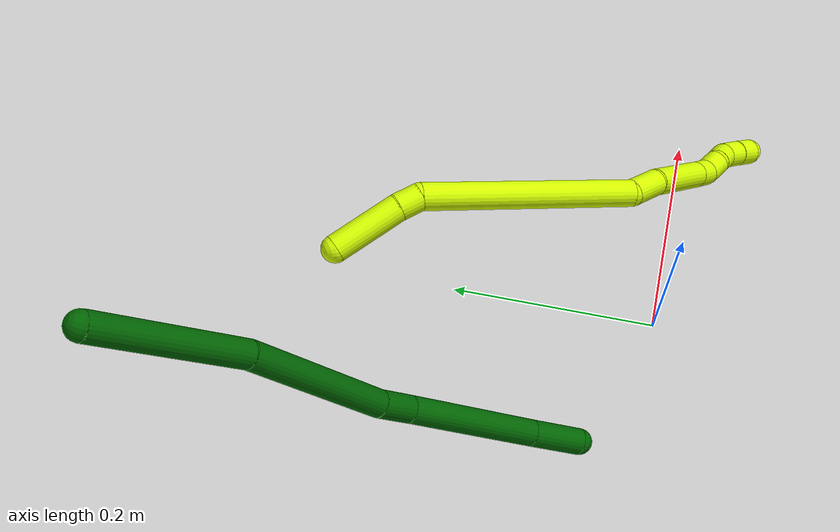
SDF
<sdf version="1.7">
 <world name="default">
  <model name="6">
   <static>0</static>
   <link name="6">
    <collision name="collision-cylinder-e_1_1_4">
     <pose>0.001621 0.018217 -0.067305 -2.87726 0.02324 -0.174379</pose>
     <geometry><cylinder><radius>0.0125</radius><length>0.139492</length></cylinder></geometry>
     <surface>
      <friction><ode><mu>1.16</mu><mu2>1.16</mu2><slip1>0</slip1><slip2>0</slip2></ode></friction>
      <contact><ode><kp>1e+06</kp><kd>1</kd><max_vel>0</max_vel><min_depth>0.001</min_depth></ode></contact>
     </surface>
    </collision>
    <visual name="visual-cylinder-e_1_1_4">
     <pose>0.001621 0.018217 -0.067305 -2.87726 0.02324 -0.174379</pose>
     <geometry><cylinder><radius>0.0125</radius><length>0.139492</length></cylinder></geometry>
     <material><ambient>0 0.392157 0.003922 1</ambient></material>
    </visual>
    <collision name="collision-cylinder-e_2_4_5">
     <pose>-0.006898 0.056097 -0.202424 -2.85937 -0.142634 0.931912</pose>
     <geometry><cylinder><radius>0.0125</radius><length>0.142662</length></cylinder></geometry>
     <surface>
      <friction><ode><mu>1.16</mu><mu2>1.16</mu2><slip1>0</slip1><slip2>0</slip2></ode></friction>
      <contact><ode><kp>1e+06</kp><kd>1</kd><max_vel>0</max_vel><min_depth>0.001</min_depth></ode></contact>
     </surface>
    </collision>
    <visual name="visual-cylinder-e_2_4_5">
     <pose>-0.006898 0.056097 -0.202424 -2.85937 -0.142634 0.931912</pose>
     <geometry><cylinder><radius>0.0125</radius><length>0.142662</length></cylinder></geometry>
     <material><ambient>0 0.392157 0.003922 1</ambient></material>
    </visual>
    <collision name="collision-cylinder-e_3_5_6">
     <pose>-0.017001 0.080185 -0.287022 -2.88384 0.002152 -0.016604</pose>
     <geometry><cylinder><radius>0.0125</radius><length>0.034716</length></cylinder></geometry>
     <surface>
      <friction><ode><mu>1.16</mu><mu2>1.16</mu2><slip1>0</slip1><slip2>0</slip2></ode></friction>
      <contact><ode><kp>1e+06</kp><kd>1</kd><max_vel>0</max_vel><min_depth>0.001</min_depth></ode></contact>
     </surface>
    </collision>
    <visual name="visual-cylinder-e_3_5_6">
     <pose>-0.017001 0.080185 -0.287022 -2.88384 0.002152 -0.016604</pose>
     <geometry><cylinder><radius>0.0125</radius><length>0.034716</length></cylinder></geometry>
     <material><ambient>0 0.392157 0.003922 1</ambient></material>
    </visual>
    <collision name="collision-cylinder-e_4_6_7">
     <pose>-0.015177 0.089704 -0.369501 -3.06421 0.0271 -0.673446</pose>
     <geometry><cylinder><radius>0.0125</radius><length>0.131832</length></cylinder></geometry>
     <surface>
      <friction><ode><mu>1.16</mu><mu2>1.16</mu2><slip1>0</slip1><slip2>0</slip2></ode></friction>
      <contact><ode><kp>1e+06</kp><kd>1</kd><max_vel>0</max_vel><min_depth>0.001</min_depth></ode></contact>
     </surface>
    </collision>
    <visual name="visual-cylinder-e_4_6_7">
     <pose>-0.015177 0.089704 -0.369501 -3.06421 0.0271 -0.673446</pose>
     <geometry><cylinder><radius>0.0125</radius><length>0.131832</length></cylinder></geometry>
     <material><ambient>0 0.392157 0.003922 1</ambient></material>
    </visual>
    <collision name="collision-cylinder-e_5_7_2">
     <pose>-0.011788 0.093693 -0.460771 3.09841 0.062557 1.93336</pose>
     <geometry><cylinder><radius>0.0125</radius><length>0.051298</length></cylinder></geometry>
     <surface>
      <friction><ode><mu>1.16</mu><mu2>1.16</mu2><slip1>0</slip1><slip2>0</slip2></ode></friction>
      <contact><ode><kp>1e+06</kp><kd>1</kd><max_vel>0</max_vel><min_depth>0.001</min_depth></ode></contact>
     </surface>
    </collision>
    <visual name="visual-cylinder-e_5_7_2">
     <pose>-0.011788 0.093693 -0.460771 3.09841 0.062557 1.93336</pose>
     <geometry><cylinder><radius>0.0125</radius><length>0.051298</length></cylinder></geometry>
     <material><ambient>0 0.392157 0.003922 1</ambient></material>
    </visual>
    <collision name="collision-sphere-2">
     <pose>-0.010184 0.092588 -0.486346 0 -0 0</pose>
     <geometry><sphere><radius>0.0125</radius></sphere></geometry>
     <surface>
      <friction><ode><mu>1.16</mu><mu2>1.16</mu2><slip1>0</slip1><slip2>0</slip2></ode></friction>
      <contact><ode><kp>1e+06</kp><kd>1</kd><max_vel>0</max_vel><min_depth>0.001</min_depth></ode></contact>
     </surface>
    </collision>
    <visual name="visual-sphere-2">
     <pose>-0.010184 0.092588 -0.486346 0 -0 0</pose>
     <geometry><sphere><radius>0.0125</radius></sphere></geometry>
     <material><ambient>0 0.392157 0.003922 1</ambient></material>
    </visual>
    <collision name="collision-sphere-7">
     <pose>-0.013391 0.094798 -0.435196 0 -0 0</pose>
     <geometry><sphere><radius>0.0125</radius></sphere></geometry>
     <surface>
      <friction><ode><mu>1.16</mu><mu2>1.16</mu2><slip1>0</slip1><slip2>0</slip2></ode></friction>
      <contact><ode><kp>1e+06</kp><kd>1</kd><max_vel>0</max_vel><min_depth>0.001</min_depth></ode></contact>
     </surface>
    </collision>
    <visual name="visual-sphere-7">
     <pose>-0.013391 0.094798 -0.435196 0 -0 0</pose>
     <geometry><sphere><radius>0.0125</radius></sphere></geometry>
     <material><ambient>0 0.392157 0.003922 1</ambient></material>
    </visual>
    <collision name="collision-sphere-6">
     <pose>-0.016963 0.08461 -0.303806 0 -0 0</pose>
     <geometry><sphere><radius>0.0125</radius></sphere></geometry>
     <surface>
      <friction><ode><mu>1.16</mu><mu2>1.16</mu2><slip1>0</slip1><slip2>0</slip2></ode></friction>
      <contact><ode><kp>1e+06</kp><kd>1</kd><max_vel>0</max_vel><min_depth>0.001</min_depth></ode></contact>
     </surface>
    </collision>
    <visual name="visual-sphere-6">
     <pose>-0.016963 0.08461 -0.303806 0 -0 0</pose>
     <geometry><sphere><radius>0.0125</radius></sphere></geometry>
     <material><ambient>0 0.392157 0.003922 1</ambient></material>
    </visual>
    <collision name="collision-sphere-5">
     <pose>-0.017038 0.075761 -0.270237 0 -0 0</pose>
     <geometry><sphere><radius>0.0125</radius></sphere></geometry>
     <surface>
      <friction><ode><mu>1.16</mu><mu2>1.16</mu2><slip1>0</slip1><slip2>0</slip2></ode></friction>
      <contact><ode><kp>1e+06</kp><kd>1</kd><max_vel>0</max_vel><min_depth>0.001</min_depth></ode></contact>
     </surface>
    </collision>
    <visual name="visual-sphere-5">
     <pose>-0.017038 0.075761 -0.270237 0 -0 0</pose>
     <geometry><sphere><radius>0.0125</radius></sphere></geometry>
     <material><ambient>0 0.392157 0.003922 1</ambient></material>
    </visual>
    <collision name="collision-sphere-1">
     <geometry><sphere><radius>0.0125</radius></sphere></geometry>
     <surface>
      <friction><ode><mu>1.16</mu><mu2>1.16</mu2><slip1>0</slip1><slip2>0</slip2></ode></friction>
      <contact><ode><kp>1e+06</kp><kd>1</kd><max_vel>0</max_vel><min_depth>0.001</min_depth></ode></contact>
     </surface>
    </collision>
    <visual name="visual-sphere-1">
     <geometry><sphere><radius>0.0125</radius></sphere></geometry>
     <material><ambient>0 0.392157 0.003922 1</ambient></material>
    </visual>
    <collision name="collision-sphere-4">
     <pose>0.003241 0.036434 -0.134611 0 -0 0</pose>
     <geometry><sphere><radius>0.0125</radius></sphere></geometry>
     <surface>
      <friction><ode><mu>1.16</mu><mu2>1.16</mu2><slip1>0</slip1><slip2>0</slip2></ode></friction>
      <contact><ode><kp>1e+06</kp><kd>1</kd><max_vel>0</max_vel><min_depth>0.001</min_depth></ode></contact>
     </surface>
    </collision>
    <visual name="visual-sphere-4">
     <pose>0.003241 0.036434 -0.134611 0 -0 0</pose>
     <geometry><sphere><radius>0.0125</radius></sphere></geometry>
     <material><ambient>0 0.392157 0.003922 1</ambient></material>
    </visual>
    <inertial>
     <pose>-0.007908 0.05992 -0.24116 0 -0 0</pose>
     <mass>0.5</mass>
     <inertia>
      <ixx>0.000573</ixx>
      <ixy>0</ixy>
      <ixz>0</ixz>
      <iyy>-0.000453</iyy>
      <iyz>0</iyz>
      <izz>-0.000159</izz>
     </inertia>
    </inertial>
   </link>
   <pose>-0.211076 0.416723 0.337985 -0.966418 -0.416702 -0.155949</pose>
  </model>
  <model name="15">
   <static>0</static>
   <link name="15">
    <collision name="collision-cylinder-e_1_1_4">
     <pose>-0.008478 0.007068 -0.030436 -2.91341 -0.264957 1.72115</pose>
     <geometry><cylinder><radius>0.0125</radius><length>0.064751</length></cylinder></geometry>
     <surface>
      <friction><ode><mu>1.16</mu><mu2>1.16</mu2><slip1>0</slip1><slip2>0</slip2></ode></friction>
      <contact><ode><kp>1e+06</kp><kd>1</kd><max_vel>0</max_vel><min_depth>0.001</min_depth></ode></contact>
     </surface>
    </collision>
    <visual name="visual-cylinder-e_1_1_4">
     <pose>-0.008478 0.007068 -0.030436 -2.91341 -0.264957 1.72115</pose>
     <geometry><cylinder><radius>0.0125</radius><length>0.064751</length></cylinder></geometry>
     <material><ambient>0.835294 1 0 1</ambient></material>
    </visual>
    <collision name="collision-cylinder-e_2_4_5">
     <pose>-0.018473 0.016231 -0.07139 -2.94502 -0.140533 1.23984</pose>
     <geometry><cylinder><radius>0.0125</radius><length>0.021663</length></cylinder></geometry>
     <surface>
      <friction><ode><mu>1.16</mu><mu2>1.16</mu2><slip1>0</slip1><slip2>0</slip2></ode></friction>
      <contact><ode><kp>1e+06</kp><kd>1</kd><max_vel>0</max_vel><min_depth>0.001</min_depth></ode></contact>
     </surface>
    </collision>
    <visual name="visual-cylinder-e_2_4_5">
     <pose>-0.018473 0.016231 -0.07139 -2.94502 -0.140533 1.23984</pose>
     <geometry><cylinder><radius>0.0125</radius><length>0.021663</length></cylinder></geometry>
     <material><ambient>0.835294 1 0 1</ambient></material>
    </visual>
    <collision name="collision-cylinder-e_3_5_6">
     <pose>0.007807 0.02938 -0.177788 -3.02681 0.280421 -2.36838</pose>
     <geometry><cylinder><radius>0.0125</radius><length>0.200876</length></cylinder></geometry>
     <surface>
      <friction><ode><mu>1.16</mu><mu2>1.16</mu2><slip1>0</slip1><slip2>0</slip2></ode></friction>
      <contact><ode><kp>1e+06</kp><kd>1</kd><max_vel>0</max_vel><min_depth>0.001</min_depth></ode></contact>
     </surface>
    </collision>
    <visual name="visual-cylinder-e_3_5_6">
     <pose>0.007807 0.02938 -0.177788 -3.02681 0.280421 -2.36838</pose>
     <geometry><cylinder><radius>0.0125</radius><length>0.200876</length></cylinder></geometry>
     <material><ambient>0.835294 1 0 1</ambient></material>
    </visual>
    <collision name="collision-cylinder-e_4_6_7">
     <pose>0.034563 0.036396 -0.290374 2.90445 -0.060471 -0.497259</pose>
     <geometry><cylinder><radius>0.0125</radius><length>0.034438</length></cylinder></geometry>
     <surface>
      <friction><ode><mu>1.16</mu><mu2>1.16</mu2><slip1>0</slip1><slip2>0</slip2></ode></friction>
      <contact><ode><kp>1e+06</kp><kd>1</kd><max_vel>0</max_vel><min_depth>0.001</min_depth></ode></contact>
     </surface>
    </collision>
    <visual name="visual-cylinder-e_4_6_7">
     <pose>0.034563 0.036396 -0.290374 2.90445 -0.060471 -0.497259</pose>
     <geometry><cylinder><radius>0.0125</radius><length>0.034438</length></cylinder></geometry>
     <material><ambient>0.835294 1 0 1</ambient></material>
    </visual>
    <collision name="collision-cylinder-e_5_7_8">
     <pose>0.036859 0.016461 -0.340876 2.7019 0.089088 0.393776</pose>
     <geometry><cylinder><radius>0.0125</radius><length>0.074993</length></cylinder></geometry>
     <surface>
      <friction><ode><mu>1.16</mu><mu2>1.16</mu2><slip1>0</slip1><slip2>0</slip2></ode></friction>
      <contact><ode><kp>1e+06</kp><kd>1</kd><max_vel>0</max_vel><min_depth>0.001</min_depth></ode></contact>
     </surface>
    </collision>
    <visual name="visual-cylinder-e_5_7_8">
     <pose>0.036859 0.016461 -0.340876 2.7019 0.089088 0.393776</pose>
     <geometry><cylinder><radius>0.0125</radius><length>0.074993</length></cylinder></geometry>
     <material><ambient>0.835294 1 0 1</ambient></material>
    </visual>
    <collision name="collision-cylinder-e_6_8_9">
     <pose>0.040893 -0.003359 -0.383923 2.74053 0.069379 0.338199</pose>
     <geometry><cylinder><radius>0.0125</radius><length>0.020145</length></cylinder></geometry>
     <surface>
      <friction><ode><mu>1.16</mu><mu2>1.16</mu2><slip1>0</slip1><slip2>0</slip2></ode></friction>
      <contact><ode><kp>1e+06</kp><kd>1</kd><max_vel>0</max_vel><min_depth>0.001</min_depth></ode></contact>
     </surface>
    </collision>
    <visual name="visual-cylinder-e_6_8_9">
     <pose>0.040893 -0.003359 -0.383923 2.74053 0.069379 0.338199</pose>
     <geometry><cylinder><radius>0.0125</radius><length>0.020145</length></cylinder></geometry>
     <material><ambient>0.835294 1 0 1</ambient></material>
    </visual>
    <collision name="collision-cylinder-e_7_9_10">
     <pose>0.038685 -0.009061 -0.402594 2.95498 -0.294351 -2.01548</pose>
     <geometry><cylinder><radius>0.0125</radius><length>0.020035</length></cylinder></geometry>
     <surface>
      <friction><ode><mu>1.16</mu><mu2>1.16</mu2><slip1>0</slip1><slip2>0</slip2></ode></friction>
      <contact><ode><kp>1e+06</kp><kd>1</kd><max_vel>0</max_vel><min_depth>0.001</min_depth></ode></contact>
     </surface>
    </collision>
    <visual name="visual-cylinder-e_7_9_10">
     <pose>0.038685 -0.009061 -0.402594 2.95498 -0.294351 -2.01548</pose>
     <geometry><cylinder><radius>0.0125</radius><length>0.020035</length></cylinder></geometry>
     <material><ambient>0.835294 1 0 1</ambient></material>
    </visual>
    <collision name="collision-cylinder-e_8_10_11">
     <pose>0.033988 -0.016501 -0.420974 2.57803 -0.167354 -0.56402</pose>
     <geometry><cylinder><radius>0.0125</radius><length>0.021498</length></cylinder></geometry>
     <surface>
      <friction><ode><mu>1.16</mu><mu2>1.16</mu2><slip1>0</slip1><slip2>0</slip2></ode></friction>
      <contact><ode><kp>1e+06</kp><kd>1</kd><max_vel>0</max_vel><min_depth>0.001</min_depth></ode></contact>
     </surface>
    </collision>
    <visual name="visual-cylinder-e_8_10_11">
     <pose>0.033988 -0.016501 -0.420974 2.57803 -0.167354 -0.56402</pose>
     <geometry><cylinder><radius>0.0125</radius><length>0.021498</length></cylinder></geometry>
     <material><ambient>0.835294 1 0 1</ambient></material>
    </visual>
    <collision name="collision-cylinder-e_9_11_12">
     <pose>0.033281 -0.024529 -0.440045 2.9118 0.103924 0.846817</pose>
     <geometry><cylinder><radius>0.0125</radius><length>0.020881</length></cylinder></geometry>
     <surface>
      <friction><ode><mu>1.16</mu><mu2>1.16</mu2><slip1>0</slip1><slip2>0</slip2></ode></friction>
      <contact><ode><kp>1e+06</kp><kd>1</kd><max_vel>0</max_vel><min_depth>0.001</min_depth></ode></contact>
     </surface>
    </collision>
    <visual name="visual-cylinder-e_9_11_12">
     <pose>0.033281 -0.024529 -0.440045 2.9118 0.103924 0.846817</pose>
     <geometry><cylinder><radius>0.0125</radius><length>0.020881</length></cylinder></geometry>
     <material><ambient>0.835294 1 0 1</ambient></material>
    </visual>
    <collision name="collision-cylinder-e_10_12_2">
     <pose>0.035693 -0.029979 -0.459955 2.83654 0.128651 0.793617</pose>
     <geometry><cylinder><radius>0.0125</radius><length>0.020719</length></cylinder></geometry>
     <surface>
      <friction><ode><mu>1.16</mu><mu2>1.16</mu2><slip1>0</slip1><slip2>0</slip2></ode></friction>
      <contact><ode><kp>1e+06</kp><kd>1</kd><max_vel>0</max_vel><min_depth>0.001</min_depth></ode></contact>
     </surface>
    </collision>
    <visual name="visual-cylinder-e_10_12_2">
     <pose>0.035693 -0.029979 -0.459955 2.83654 0.128651 0.793617</pose>
     <geometry><cylinder><radius>0.0125</radius><length>0.020719</length></cylinder></geometry>
     <material><ambient>0.835294 1 0 1</ambient></material>
    </visual>
    <collision name="collision-sphere-2">
     <pose>0.037022 -0.033065 -0.469755 0 -0 0</pose>
     <geometry><sphere><radius>0.0125</radius></sphere></geometry>
     <surface>
      <friction><ode><mu>1.16</mu><mu2>1.16</mu2><slip1>0</slip1><slip2>0</slip2></ode></friction>
      <contact><ode><kp>1e+06</kp><kd>1</kd><max_vel>0</max_vel><min_depth>0.001</min_depth></ode></contact>
     </surface>
    </collision>
    <visual name="visual-sphere-2">
     <pose>0.037022 -0.033065 -0.469755 0 -0 0</pose>
     <geometry><sphere><radius>0.0125</radius></sphere></geometry>
     <material><ambient>0.835294 1 0 1</ambient></material>
    </visual>
    <collision name="collision-sphere-12">
     <pose>0.034364 -0.026894 -0.450156 0 -0 0</pose>
     <geometry><sphere><radius>0.0125</radius></sphere></geometry>
     <surface>
      <friction><ode><mu>1.16</mu><mu2>1.16</mu2><slip1>0</slip1><slip2>0</slip2></ode></friction>
      <contact><ode><kp>1e+06</kp><kd>1</kd><max_vel>0</max_vel><min_depth>0.001</min_depth></ode></contact>
     </surface>
    </collision>
    <visual name="visual-sphere-12">
     <pose>0.034364 -0.026894 -0.450156 0 -0 0</pose>
     <geometry><sphere><radius>0.0125</radius></sphere></geometry>
     <material><ambient>0.835294 1 0 1</ambient></material>
    </visual>
    <collision name="collision-sphere-11">
     <pose>0.032198 -0.022163 -0.429934 0 -0 0</pose>
     <geometry><sphere><radius>0.0125</radius></sphere></geometry>
     <surface>
      <friction><ode><mu>1.16</mu><mu2>1.16</mu2><slip1>0</slip1><slip2>0</slip2></ode></friction>
      <contact><ode><kp>1e+06</kp><kd>1</kd><max_vel>0</max_vel><min_depth>0.001</min_depth></ode></contact>
     </surface>
    </collision>
    <visual name="visual-sphere-11">
     <pose>0.032198 -0.022163 -0.429934 0 -0 0</pose>
     <geometry><sphere><radius>0.0125</radius></sphere></geometry>
     <material><ambient>0.835294 1 0 1</ambient></material>
    </visual>
    <collision name="collision-sphere-10">
     <pose>0.035779 -0.010839 -0.412014 0 -0 0</pose>
     <geometry><sphere><radius>0.0125</radius></sphere></geometry>
     <surface>
      <friction><ode><mu>1.16</mu><mu2>1.16</mu2><slip1>0</slip1><slip2>0</slip2></ode></friction>
      <contact><ode><kp>1e+06</kp><kd>1</kd><max_vel>0</max_vel><min_depth>0.001</min_depth></ode></contact>
     </surface>
    </collision>
    <visual name="visual-sphere-10">
     <pose>0.035779 -0.010839 -0.412014 0 -0 0</pose>
     <geometry><sphere><radius>0.0125</radius></sphere></geometry>
     <material><ambient>0.835294 1 0 1</ambient></material>
    </visual>
    <collision name="collision-sphere-9">
     <pose>0.041592 -0.007282 -0.393174 0 -0 0</pose>
     <geometry><sphere><radius>0.0125</radius></sphere></geometry>
     <surface>
      <friction><ode><mu>1.16</mu><mu2>1.16</mu2><slip1>0</slip1><slip2>0</slip2></ode></friction>
      <contact><ode><kp>1e+06</kp><kd>1</kd><max_vel>0</max_vel><min_depth>0.001</min_depth></ode></contact>
     </surface>
    </collision>
    <visual name="visual-sphere-9">
     <pose>0.041592 -0.007282 -0.393174 0 -0 0</pose>
     <geometry><sphere><radius>0.0125</radius></sphere></geometry>
     <material><ambient>0.835294 1 0 1</ambient></material>
    </visual>
    <collision name="collision-sphere-4">
     <pose>-0.016956 0.014136 -0.060872 0 -0 0</pose>
     <geometry><sphere><radius>0.0125</radius></sphere></geometry>
     <surface>
      <friction><ode><mu>1.16</mu><mu2>1.16</mu2><slip1>0</slip1><slip2>0</slip2></ode></friction>
      <contact><ode><kp>1e+06</kp><kd>1</kd><max_vel>0</max_vel><min_depth>0.001</min_depth></ode></contact>
     </surface>
    </collision>
    <visual name="visual-sphere-4">
     <pose>-0.016956 0.014136 -0.060872 0 -0 0</pose>
     <geometry><sphere><radius>0.0125</radius></sphere></geometry>
     <material><ambient>0.835294 1 0 1</ambient></material>
    </visual>
    <collision name="collision-sphere-1">
     <geometry><sphere><radius>0.0125</radius></sphere></geometry>
     <surface>
      <friction><ode><mu>1.16</mu><mu2>1.16</mu2><slip1>0</slip1><slip2>0</slip2></ode></friction>
      <contact><ode><kp>1e+06</kp><kd>1</kd><max_vel>0</max_vel><min_depth>0.001</min_depth></ode></contact>
     </surface>
    </collision>
    <visual name="visual-sphere-1">
     <geometry><sphere><radius>0.0125</radius></sphere></geometry>
     <material><ambient>0.835294 1 0 1</ambient></material>
    </visual>
    <collision name="collision-sphere-8">
     <pose>0.040195 0.000564 -0.374671 0 -0 0</pose>
     <geometry><sphere><radius>0.0125</radius></sphere></geometry>
     <surface>
      <friction><ode><mu>1.16</mu><mu2>1.16</mu2><slip1>0</slip1><slip2>0</slip2></ode></friction>
      <contact><ode><kp>1e+06</kp><kd>1</kd><max_vel>0</max_vel><min_depth>0.001</min_depth></ode></contact>
     </surface>
    </collision>
    <visual name="visual-sphere-8">
     <pose>0.040195 0.000564 -0.374671 0 -0 0</pose>
     <geometry><sphere><radius>0.0125</radius></sphere></geometry>
     <material><ambient>0.835294 1 0 1</ambient></material>
    </visual>
    <collision name="collision-sphere-5">
     <pose>-0.019991 0.018326 -0.081908 0 -0 0</pose>
     <geometry><sphere><radius>0.0125</radius></sphere></geometry>
     <surface>
      <friction><ode><mu>1.16</mu><mu2>1.16</mu2><slip1>0</slip1><slip2>0</slip2></ode></friction>
      <contact><ode><kp>1e+06</kp><kd>1</kd><max_vel>0</max_vel><min_depth>0.001</min_depth></ode></contact>
     </surface>
    </collision>
    <visual name="visual-sphere-5">
     <pose>-0.019991 0.018326 -0.081908 0 -0 0</pose>
     <geometry><sphere><radius>0.0125</radius></sphere></geometry>
     <material><ambient>0.835294 1 0 1</ambient></material>
    </visual>
    <collision name="collision-sphere-6">
     <pose>0.035604 0.040434 -0.273668 0 -0 0</pose>
     <geometry><sphere><radius>0.0125</radius></sphere></geometry>
     <surface>
      <friction><ode><mu>1.16</mu><mu2>1.16</mu2><slip1>0</slip1><slip2>0</slip2></ode></friction>
      <contact><ode><kp>1e+06</kp><kd>1</kd><max_vel>0</max_vel><min_depth>0.001</min_depth></ode></contact>
     </surface>
    </collision>
    <visual name="visual-sphere-6">
     <pose>0.035604 0.040434 -0.273668 0 -0 0</pose>
     <geometry><sphere><radius>0.0125</radius></sphere></geometry>
     <material><ambient>0.835294 1 0 1</ambient></material>
    </visual>
    <collision name="collision-sphere-7">
     <pose>0.033523 0.032359 -0.30708 0 -0 0</pose>
     <geometry><sphere><radius>0.0125</radius></sphere></geometry>
     <surface>
      <friction><ode><mu>1.16</mu><mu2>1.16</mu2><slip1>0</slip1><slip2>0</slip2></ode></friction>
      <contact><ode><kp>1e+06</kp><kd>1</kd><max_vel>0</max_vel><min_depth>0.001</min_depth></ode></contact>
     </surface>
    </collision>
    <visual name="visual-sphere-7">
     <pose>0.033523 0.032359 -0.30708 0 -0 0</pose>
     <geometry><sphere><radius>0.0125</radius></sphere></geometry>
     <material><ambient>0.835294 1 0 1</ambient></material>
    </visual>
    <inertial>
     <pose>0.016675 0.014923 -0.236725 0 -0 0</pose>
     <mass>0.5</mass>
     <inertia>
      <ixx>-0.000847</ixx>
      <ixy>0</ixy>
      <ixz>0</ixz>
      <iyy>4.4e-05</iyy>
      <iyz>0</iyz>
      <izz>-0.000283</izz>
     </inertia>
    </inertial>
   </link>
   <pose>-0.05558 0.288531 0.184237 1.27561 0.435106 -2.59978</pose>
  </model>
 </world>
</sdf>
